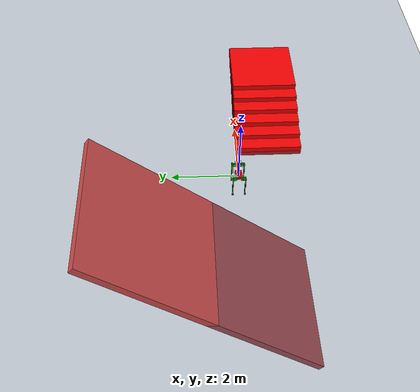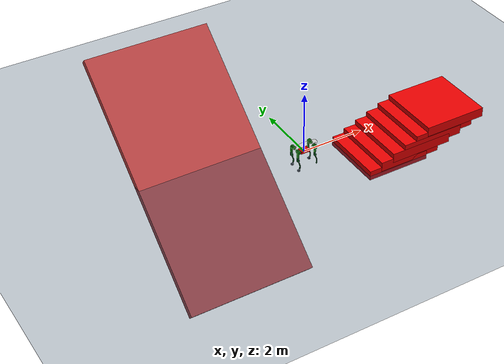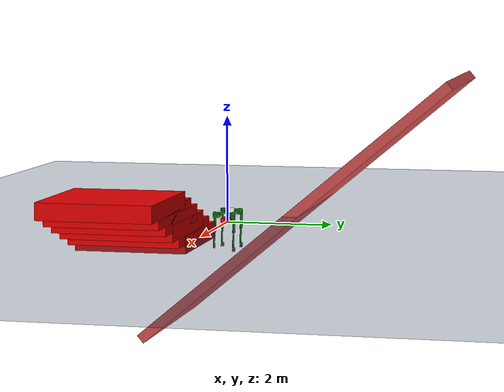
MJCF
<mujoco model="demir_1">
  <include file="robot.xml" />
  <compiler angle="radian" autolimits="true" meshdir="./meshes" />
  <default>
  <geom solref="0.002 1" solimp="0.99 0.99 0.001" friction="2.0 0.1 0.01" condim="4"/>
</default>

  <statistic meansize="0.233652" extent="1.00882" center="0 0 -0.175588" />
  <asset>
    <texture type="skybox" builtin="gradient" rgb1="0.3 0.5 0.7" rgb2="0 0 0" width="32"
      height="192" />
    <texture type="cube" name="body" builtin="flat" mark="cross" rgb1="0.8 0.6 0.4"
      rgb2="0.8 0.6 0.4" markrgb="1 1 1" width="127" height="762" />
    <texture type="2d" name="grid" builtin="checker" rgb1="0.1 0.2 0.3" rgb2="0.2 0.3 0.4"
      width="512" height="512" />
    <material name="body" texture="body" texuniform="true" rgba="0.8 0.6 0.4 1" />
    <material name="grid" texture="grid" texuniform="true" reflectance="0.2" />
  </asset>
  <worldbody>
    <geom name="floor" size="0 0 1" type="plane" material="grid" />

    <light name="spotlight" target="demir/base_link_inertia" pos="0 -6 6" dir="0 0 -1" cutoff="30"
      diffuse="0.8 0.8 0.8" mode="targetbodycom" />

    <body name="slope40" pos="-3 1 0">
      <geom name="slope40_geom" type="box" size="2 4 0.1" pos="0 0 0"
        quat="0.9397 0.3420 0 0" rgba="0.8 0.3 0.3 1" />
    </body>
    <body pos="2. -1 -.001" euler="0 0 0">
      <inertial pos="0.5 .5 0" mass="18" />
      <geom type="box" size="1 1 0.15" name="box" rgba=".9 0 0 1" />

      <body pos="0.4 0 0.16" euler="0 0 0">
        <inertial pos="0.5 .5 0" mass="18" />
        <geom type="box" size="1 1 0.15" name="box1" rgba=".9 0 0 1" />

        <body pos="0.4 0 0.16" euler="0 0 0">
          <inertial pos="0.5 .5 0" mass="18" />
          <geom type="box" size="1 1 0.15" name="box2" rgba=".9 0 0 1" />

          <body pos="0.4 0 0.16" euler="0 0 0">
            <inertial pos="0.5 .5 0" mass="18" />
            <geom type="box" size="1 1 0.15" name="box3" rgba=".9 0 0 1" />

            <body pos="0.4 0 0.16" euler="0 0 0">
              <inertial pos="0.5 .5 0" mass="18" />
              <geom type="box" size="1 1 0.15" name="box4" rgba=".9 0 0 1" />

              <body pos="0.4 0 0.16" euler="0 0 0">
              <inertial pos="0.5 .5 0" mass="18" />
                <geom type="box" size="1 1 0.15" name="box5" rgba=".9 0 0 1" />
              </body>
            </body>
          </body>
        </body>
      </body>
    </body>

  </worldbody>
  <actuator>
    <motor name="demir/abad_1_torque" joint="demir/abad_1_joint" forcelimited="true"
      forcerange="-125 125" />
    <position name="demir/abad_1_pos" joint="demir/abad_1_joint" kp="0" />
    <velocity name="demir/abad_1_vel" joint="demir/abad_1_joint" kv="0" />
    <motor name="demir/hip_1_joint" joint="demir/hip_1_joint" forcelimited="true"
      forcerange="-125 125" />
    <position name="demir/hip_1_pos" joint="demir/hip_1_joint" kp="0" />
    <velocity name="demir/hip_1_vel" joint="demir/hip_1_joint" kv="0" />

    <motor name="demir/knee_1_joint" joint="demir/knee_1_joint" forcelimited="true"
      forcerange="-125 125" />
    <position name="demir/knee_1_pos" joint="demir/knee_1_joint" kp="0" />
    <velocity name="demir/knee_1_vel" joint="demir/knee_1_joint" kv="0" />

    <motor name="demir/abad_2_torque" joint="demir/abad_2_joint" forcelimited="true"
      forcerange="-125 125" />
    <position name="demir/abad_2_pos" joint="demir/abad_2_joint" kp="0" />
    <velocity name="demir/abad_2_vel" joint="demir/abad_2_joint" kv="0" />
    <motor name="demir/hip_2_joint" joint="demir/hip_2_joint" forcelimited="true"
      forcerange="-125 125" />
    <position name="demir/hip_2_pos" joint="demir/hip_2_joint" kp="0" />
    <velocity name="demir/hip_2_vel" joint="demir/hip_2_joint" kv="0" />

    <motor name="demir/knee_2_joint" joint="demir/knee_2_joint" forcelimited="true"
      forcerange="-125 125" />
    <position name="demir/knee_2_pos" joint="demir/knee_2_joint" kp="0" />
    <velocity name="demir/knee_2_vel" joint="demir/knee_2_joint" kv="0" />

    <motor name="demir/abad_3_torque" joint="demir/abad_3_joint" forcelimited="true"
      forcerange="-125 125" />
    <position name="demir/abad_3_pos" joint="demir/abad_3_joint" kp="0" />
    <velocity name="demir/abad_3_vel" joint="demir/abad_3_joint" kv="0" />

    <motor name="demir/hip_3_joint" joint="demir/hip_3_joint" forcelimited="true"
      forcerange="-125 125" />
    <position name="demir/hip_3_pos" joint="demir/hip_3_joint" kp="0" />
    <velocity name="demir/hip_3_vel" joint="demir/hip_3_joint" kv="0" />

    <motor name="demir/knee_3_joint" joint="demir/knee_3_joint" forcelimited="true"
      forcerange="-125 125" />
    <position name="demir/knee_3_pos" joint="demir/knee_3_joint" kp="0" />
    <velocity name="demir/knee_3_vel" joint="demir/knee_3_joint" kv="0" />

    <motor name="demir/abad_4_torque" joint="demir/abad_4_joint" forcelimited="true"
      forcerange="-125 125" />
    <position name="demir/abad_4_pos" joint="demir/abad_4_joint" kp="0" />
    <velocity name="demir/abad_4_vel" joint="demir/abad_4_joint" kv="0" />

    <motor name="demir/hip_4_joint" joint="demir/hip_4_joint" forcelimited="true"
      forcerange="-125 125" />
    <position name="demir/hip_4_pos" joint="demir/hip_4_joint" kp="0" />
    <velocity name="demir/hip_4_vel" joint="demir/hip_4_joint" kv="0" />

    <motor name="demir/knee_4_joint" joint="demir/knee_4_joint" forcelimited="true"
      forcerange="-125 125" />
    <position name="demir/knee_4_pos" joint="demir/knee_4_joint" kp="0" />
    <velocity name="demir/knee_4_vel" joint="demir/knee_4_joint" kv="0" />

  </actuator>

  <contact>
    <pair geom1="floor" geom2="ROBOT_FOOT_1" condim="3" friction="1 1 0.005 0.0001 0.0001"
      solimp="0.9 0.95 0.001 0.1 6" />
    <pair geom1="floor" geom2="ROBOT_FOOT_2" condim="3" friction="1 1 0.005 0.0001 0.0001"
      solimp="0.9 0.95 0.001 0.1 6" />
    <pair geom1="floor" geom2="ROBOT_FOOT_3" condim="3" friction="1 1 0.005 0.0001 0.0001"
      solimp="0.9 0.95 0.001 0.1 6" />
    <pair geom1="floor" geom2="ROBOT_FOOT_4" condim="3" friction="1 1 0.005 0.0001 0.0001"
      solimp="0.9 0.95 0.001 0.1 6" />

    <pair geom1="hip1" geom2="ROBOT_FOOT_1" condim="3" friction="1 1 0.005 0.0001 0.0001"
      solimp="0.9 0.95 0.001 0.1 6" />
    <pair geom1="hip2" geom2="ROBOT_FOOT_2" condim="3" friction="1 1 0.005 0.0001 0.0001"
      solimp="0.9 0.95 0.001 0.1 6" />
    <pair geom1="hip3" geom2="ROBOT_FOOT_3" condim="3" friction="1 1 0.005 0.0001 0.0001"
      solimp="0.9 0.95 0.001 0.1 6" />
    <pair geom1="hip4" geom2="ROBOT_FOOT_4" condim="3" friction="1 1 0.005 0.0001 0.0001"
      solimp="0.9 0.95 0.001 0.1 6" />

    <exclude body1="demir/hip_1" body2="demir/base_link_inertia" />
    <exclude body1="demir/hip_2" body2="demir/base_link_inertia" />
    <exclude body1="demir/hip_3" body2="demir/base_link_inertia" />
    <exclude body1="demir/hip_4" body2="demir/base_link_inertia" />

    <exclude body1="demir/knee_1" body2="demir/base_link_inertia" />
    <exclude body1="demir/knee_2" body2="demir/base_link_inertia" />
    <exclude body1="demir/knee_3" body2="demir/base_link_inertia" />
    <exclude body1="demir/knee_4" body2="demir/base_link_inertia" />

  </contact>

  <sensor>
    <accelerometer name="acc" site="sensorsurf" />
    <gyro site="sensorsurf" />
    <framequat name="quat" objtype="body" objname="demir/base_link_inertia" />
  </sensor>

  <keyframe>
    <key name="home" qpos="-1 -1 -1.27 1 0 0  0
     0.1 0.9 -1.8
      0.1 0.9 -1.8
      0.1 0.9 -1.8
      0.3 0.9 -1.8"
      />
  </keyframe>
</mujoco>

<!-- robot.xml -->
<mujoco model="demir">
  <compiler angle="radian"/>

  <asset>
    <mesh name="body" file="body.stl"/>
    <mesh name="abduction" file="abduction.stl"/>
    <mesh name="hip_R" file="hip_R.stl"/>
    <mesh name="knee" file="knee.stl"/>
    <mesh name="hip_L" file="hip_L.stl"/>
    <mesh name="foot" file="foot.stl"/>

  </asset>

  <worldbody>
    <body name="demir/base_link_inertia" pos="0 0 0.17" >
      <site name="sensorsurf" pos="0 0 0" size=".005 .005 .005" rgba="0.5 0.5 0.5 1" euler="0 0 0"/>
      <inertial pos="0.0145231 0.004856 0.0015483" quat="0.000802123 0.724023 0.00431105 0.689762" mass="19.784" diaginertia="0.644006 0.569823 0.192396"/>
      <joint name="demir/base_joint" type="free" limited="false" actuatorfrclimited="false"/>
      <geom type="mesh" mesh="body" rgba="0 0 0 0.1" />
      <geom name="below" type="box" size="0.15 0.1 0.0375 " pos="0 0.0000 -0.1275" rgba="1 0 0 0.9" />
      <body name="demir/abad_1" pos="0.229275 -0.0805 0" >
        <inertial pos="0.0213551 -0.0020253 -8.59e-05" quat="0.492821 0.490106 0.51002 0.506757" mass="0.67" diaginertia="0.00314843 0.0029222 0.000968106"/>
        <joint name="demir/abad_1_joint" pos="0 0 0" axis="1 0 0" range="-3.14159 3.14159" actuatorfrcrange="-1000 1000" damping="0.03" frictionloss="0.05"/>
        <geom pos="0 0 0" quat="0.000796327 -1 0 0" type="mesh" rgba="0 0.4 0 1" mesh="abduction"/>
        <body name="demir/hip_1" pos="0.064 -0.0255 0">
          <inertial pos="-0.0077265 -0.05615 -0.0569718" quat="0.827346 0.0229031 -0.0663041 0.557295" mass="2.015" diaginertia="0.0300671 0.028203 0.00420615"/>
          <joint name="demir/hip_1_joint" pos="0 0 0" axis="0 -1 0" range="-3.14159 3.14159" actuatorfrcrange="-1000 1000" damping="0.03" frictionloss="0.05"/>
          <geom name= "hip1" type="mesh" rgba="0 0.4 0 1" mesh="hip_R"/>
          <body name="demir/knee_1" pos="0 -0.07835 -0.32">
            <inertial pos="0.0149488 -9.3796e-05 -0.25134" quat="0.706864 0.0361936 0.0365843 0.705475" mass="0.919" diaginertia="0.00863144 0.0084593 0.000305758"/>
            <joint name="demir/knee_1_joint" pos="0 0 0" axis="0 -1 0" range="-3.14159 3.14159" actuatorfrcrange="-1000 1000" damping="0.03" frictionloss="0.05"/>
            <geom type="mesh" rgba="0 0.4 0 1" mesh="knee"/>
            <geom name="ROBOT_FOOT_1" type="mesh" pos="0 -0.0006 -0.3269" rgba="0 0 0 0.1" mesh="foot"/>

          </body>
        </body>
      </body>
      <body name="demir/abad_2" pos="0.229275 0.0805 0">
        <inertial pos="0.0213551 0.0020253 -8.59e-05" quat="0.506757 0.51002 0.490106 0.492821" mass="0.67" diaginertia="0.00314843 0.0029222 0.000968106"/>
        <joint name="demir/abad_2_joint" pos="0 0 0" axis="1 0 0" range="-3.14159 3.14159" actuatorfrcrange="-1000 1000" damping="0.03" frictionloss="0.05"/>
        <geom type="mesh" rgba="0 0.4 0 1" mesh="abduction"/>
        <body name="demir/hip_2" pos="0.064 0.0255 0">
          <inertial pos="-0.0077265 0.05615 -0.0569718" quat="0.557295 -0.0663041 0.0229031 0.827346" mass="2.015" diaginertia="0.0300671 0.028203 0.00420615"/>
          <joint name="demir/hip_2_joint" pos="0 0 0" axis="0 -1 0" range="-3.14159 3.14159" actuatorfrcrange="-1000 1000" damping="0.03" frictionloss="0.05"/>
          <geom type="mesh" name= "hip2" rgba="0 0.4 0 1" mesh="hip_L"/>
          <body name="demir/knee_2" pos="0 0.07835 -0.32">
            <inertial pos="0.0149488 9.3796e-05 -0.25134" quat="0.705475 0.0365843 0.0361936 0.706864" mass="0.919" diaginertia="0.00863144 0.0084593 0.000305758"/>
            <joint name="demir/knee_2_joint" pos="0 0 0" axis="0 -1 0" range="-3.14159 3.14159" actuatorfrcrange="-1000 1000" damping="0.03" frictionloss="0.05"/>
            <geom type="mesh" rgba="0 0.4 0 1" mesh="knee"/>
            <geom name="ROBOT_FOOT_2" type="mesh" pos="0 0.0006 -0.3269" rgba="0 0 0 1" mesh="foot"/>

          </body>
        </body>
      </body>
      <body name="demir/abad_3" pos="-0.229275 -0.0805 0">
        <inertial pos="-0.0213551 -0.0020253 -8.59e-05" quat="0.51002 0.506757 0.492821 0.490106" mass="0.67" diaginertia="0.00314843 0.0029222 0.000968106"/>
        <joint name="demir/abad_3_joint" pos="0 0 0" axis="1 0 0" range="-3.14159 3.14159" actuatorfrcrange="-1000 1000" damping="0.03" frictionloss="0.05"/>
        <geom pos="0 0 0" quat="6.34136e-07 -0.000796326 -0.000796326 -0.999999" type="mesh" rgba="0 0.4 0 1" mesh="abduction"/>
        <body name="demir/hip_3" pos="-0.064 -0.0255 0">
          <inertial pos="-0.0077265 -0.05615 -0.0569718" quat="0.557295 0.0663041 -0.0229031 0.827346" mass="2.015" diaginertia="0.0300671 0.028203 0.00420615"/>
          <joint name="demir/hip_3_joint" pos="0 0 0" axis="0 -1 0" range="-3.14159 3.14159" actuatorfrcrange="-1000 1000" damping="0.03" frictionloss="0.05"/>
          <geom type="mesh" name= "hip3" rgba="0 0.4 0 1" mesh="hip_R"/>
          <body name="demir/knee_3" pos="0 -0.07835 -0.32">
            <inertial pos="0.0149488 -9.3796e-05 -0.25134" quat="0.706282 0.00169874 0.00201806 0.707925" mass="0.919" diaginertia="0.00863144 0.00837337 0.000391682"/>
            <joint name="demir/knee_3_joint" pos="0 0 0" axis="0 -1 0" range="-3.14159 3.14159" actuatorfrcrange="-1000 1000" damping="0.03" frictionloss="0.05"/>
            <geom type="mesh" rgba="0 0.4 0 1" mesh="knee"/>
            <geom name="ROBOT_FOOT_3" type="mesh" pos="0 -0.0006 -0.3269" rgba="0 0 0 1" mesh="foot"/>

          </body>
        </body>
      </body>
      <body name="demir/abad_4" pos="-0.229275 0.0805 0">
        <inertial pos="-0.0213551 0.0020253 -8.59e-05" quat="0.490106 0.492821 0.506757 0.51002" mass="0.67" diaginertia="0.00314843 0.0029222 0.000968106"/>
        <joint name="demir/abad_4_joint" pos="0 0 0" axis="1 0 0" range="-3.14159 3.14159" actuatorfrcrange="-1000 1000" damping="0.03" frictionloss="0.05"/>
        <geom pos="0 0 0" quat="0.000796327 0 -1 0" type="mesh" rgba="0 0.4 0 1" mesh="abduction"/>
        <body name="demir/hip_4" pos="-0.064 0.0255 0">
          <inertial pos="-0.0077265 0.05615 -0.0569718" quat="0.827346 -0.0229031 0.0663041 0.557295" mass="2.015" diaginertia="0.0300671 0.028203 0.00420615"/>
          <joint name="demir/hip_4_joint" pos="0 0 0" axis="0 -1 0" range="-3.14159 3.14159" actuatorfrcrange="-1000 1000" damping="0.03" frictionloss="0.05"/>
          <geom type="mesh" name= "hip4" rgba="0 0.4 0 1" mesh="hip_L"/>
          <body name="demir/knee_4" pos="0 0.07835 -0.32">
            <inertial pos="0.0149488 9.3796e-05 -0.25134" quat="0.707925 0.00201806 0.00169874 0.706282" mass="0.919" diaginertia="0.00863144 0.00837337 0.000391682"/>
            <joint name="demir/knee_4_joint" pos="0 0 0" axis="0 -1 0" range="-3.14159 3.14159" actuatorfrcrange="-1000 1000" damping="0.03" frictionloss="0.05"/>
            <geom type="mesh" rgba="0 0.4 0 1" mesh="knee"/>
            <geom name="ROBOT_FOOT_4" type="mesh" pos="0 0.0006 -0.3269" rgba="0 0 0 1" mesh="foot"/>

          </body>
        </body>
      </body>
    </body>
  </worldbody>
</mujoco>
